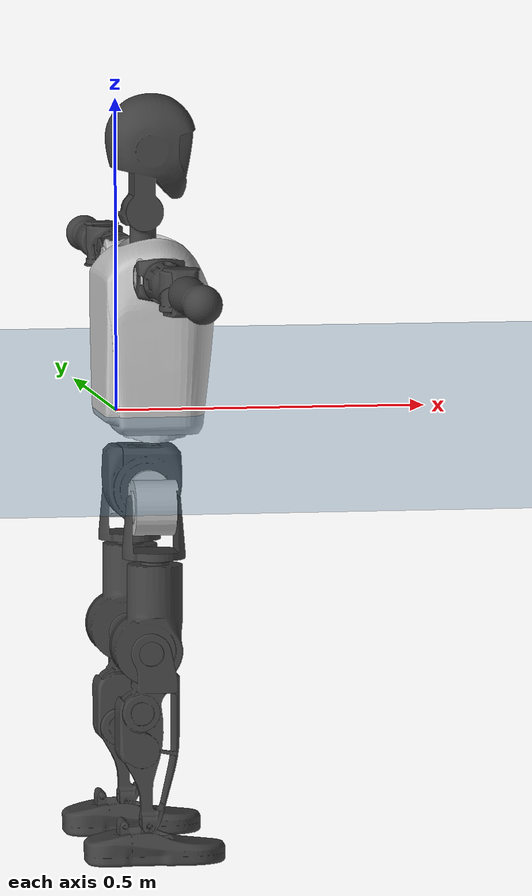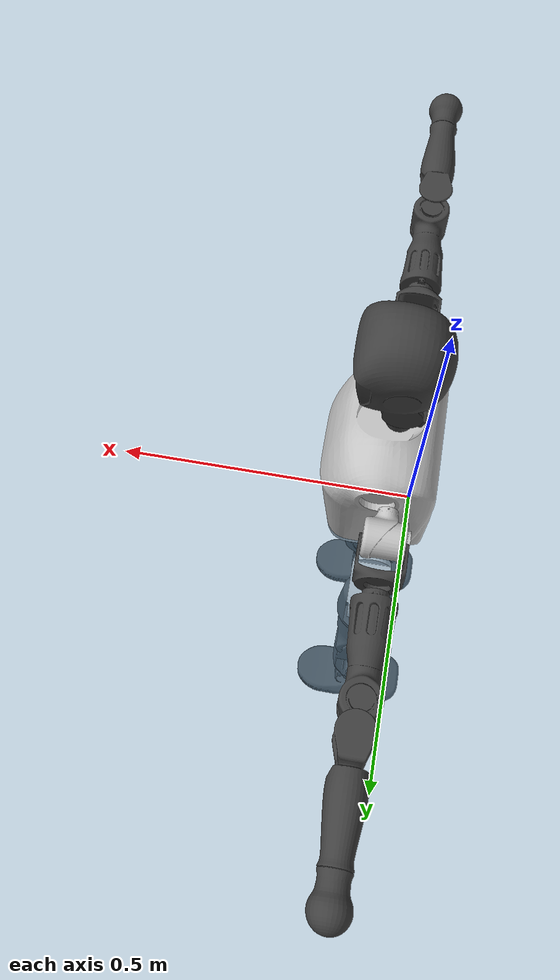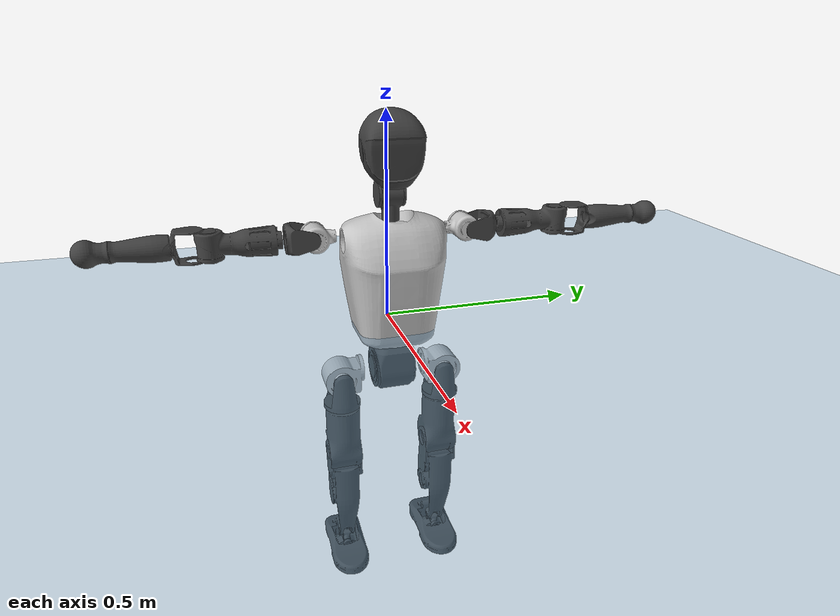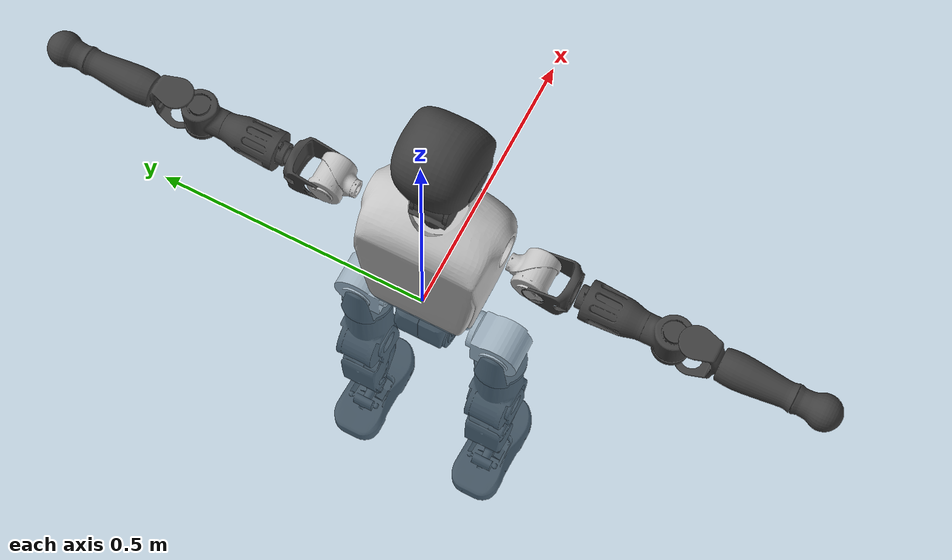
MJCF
<mujoco model="T1">
  <compiler angle="radian" assetdir="assets" balanceinertia="true" inertiafromgeom="false"/>

  <option timestep="0.005" density="1.2" viscosity="2e-05"/>

  <size nkey="1"/>

  <visual>
    <quality shadowsize="8192"/>
    <map shadowclip="0.5"/>
  </visual>

  <default>
    <default class="/">
      <joint armature="0.01" damping="0.01" frictionloss="0.1"/>
      <geom contype="0" conaffinity="0" group="1" solref="-1000 -80"/>
      <site size="0.01 0.005 0.005" group="5"/>
      <general forcelimited="true" biastype="affine" gainprm="25" biasprm="0 -25 -0.6"/>
      <default class="t1">
        <geom rgba="0.25 0.25 0.25 1"/>
        <default class="visual">
          <geom type="mesh" group="2"/>
        </default>
        <default class="collision">
          <geom group="3"/>
        </default>
        <default class="foot">
          <geom size="0.1115 0.05 0.015" type="box" condim="6" group="4" priority="1" solimp="0.015 1 0.015"/>
        </default>
        <default class="reward_collision_sphere">
          <geom group="5" rgba="1 0 0 1"/>
        </default>
      </default>
    </default>
  </default>

  <asset>
    <texture type="skybox" colorspace="auto" name="//unnamed_texture_0" builtin="gradient" rgb1="0.95 0.95 0.95" rgb2="0.95 0.95 0.95" width="100" height="600"/>
    <texture type="2d" colorspace="auto" name="texplane" builtin="checker" rgb1="0.345 0.575 0.748" rgb2="0.345 0.575 0.748" markrgb="1 1 1" width="512" height="512"/>
    <material name="MatPlane" class="/" texture="texplane" texuniform="true" texrepeat="2 2" specular="0.9"/>
    <mesh name="Trunk" class="/" file="Trunk.stl"/>
    <mesh name="H1" class="/" file="H1.stl"/>
    <mesh name="H2" class="/" file="H2.stl"/>
    <mesh name="AL1" class="/" file="AL1.stl"/>
    <mesh name="AL2" class="/" file="AL2.stl"/>
    <mesh name="AL3" class="/" file="AL3.stl"/>
    <mesh name="left_hand_link" class="/" file="left_hand_link.stl"/>
    <mesh name="AR1" class="/" file="AR1.stl"/>
    <mesh name="AR2" class="/" file="AR2.stl"/>
    <mesh name="AR3" class="/" file="AR3.stl"/>
    <mesh name="right_hand_link" class="/" file="right_hand_link.stl"/>
    <mesh name="Waist" class="/" file="Waist.stl"/>
    <mesh name="Hip_Pitch_Left" class="/" file="Hip_Pitch_Left.stl"/>
    <mesh name="Hip_Roll_Left" class="/" file="Hip_Roll_Left.stl"/>
    <mesh name="Hip_Yaw_Left" class="/" file="Hip_Yaw_Left.stl"/>
    <mesh name="Shank_Left" class="/" file="Shank_Left.stl"/>
    <mesh name="Ankle_Cross_Left" class="/" file="Ankle_Cross_Left.stl"/>
    <mesh name="left_foot_link" class="/" file="left_foot_link.stl"/>
    <mesh name="Hip_Pitch_Right" class="/" file="Hip_Pitch_Right.stl"/>
    <mesh name="Hip_Roll_Right" class="/" file="Hip_Roll_Right.stl"/>
    <mesh name="Hip_Yaw_Right" class="/" file="Hip_Yaw_Right.stl"/>
    <mesh name="Shank_Right" class="/" file="Shank_Right.stl"/>
    <mesh name="Ankle_Cross_Right" class="/" file="Ankle_Cross_Right.stl"/>
    <mesh name="right_foot_link" class="/" file="right_foot_link.stl"/>
  </asset>

  <worldbody>
    <geom name="floor" class="/" size="100 100 0.125" type="plane" group="0" material="MatPlane"/>
    <light name="toplight_shadow" class="/" pos="0 0 5" dir="0.0990148 0.0990148 -0.990148" type="directional" ambient="0.04 0.04 0.04" diffuse="0.55 0.55 0.55" specular="0.12 0.12 0.12"/>
    <light name="toplight_fill" class="/" pos="0 0 5" dir="0.0990148 0.0990148 -0.990148" type="directional" castshadow="false" ambient="0.04 0.04 0.04" diffuse="0.3 0.3 0.3" specular="0.08 0.08 0.08"/>
    <body name="trunk" childclass="t1" pos="0.000206536 -0.000280024 4.0011e-05" quat="1 0.000169866 0.000158871 0.000135726">
      <inertial pos="0.0406464 0.00220602 0.112898" quat="0.999808 0.00634238 -0.0185431 -0.000378856" mass="12.0084" diaginertia="0.0169527 0.25052 0.0699607"/>
      <joint name="//unnamed_joint_0" type="free" armature="0" damping="0" frictionloss="0"/>
      <geom name="//unnamed_geom_1" class="visual" rgba="0.76 0.76 0.76 1" mesh="Trunk"/>
      <geom name="//unnamed_geom_2" class="collision" size="0.0758694 0.101159 0.151739" pos="0.0429603 0 0.125825" type="box"/>
      <geom name="//unnamed_geom_3" class="reward_collision_sphere" size="0.116333" pos="0.0429603 0 0.104854"/>
      <geom name="//unnamed_geom_4" class="reward_collision_sphere" size="0.0151739" pos="0.0429603 0.107969 0"/>
      <geom name="//unnamed_geom_5" class="reward_collision_sphere" size="0.0151739" pos="0.0429603 -0.107969 0"/>
      <geom name="//unnamed_geom_6" class="reward_collision_sphere" size="0.0151739" pos="0.0429603 0.135914 0.188738"/>
      <geom name="//unnamed_geom_7" class="reward_collision_sphere" size="0.0151739" pos="0.0429603 -0.135914 0.188738"/>
      <site name="imu" pos="-0.009057 -0.00598082 -0.00333938" size="0.0101159"/>
      <camera name="track" pos="0 -2.54045 0" quat="0.707107 0.707107 0 0" mode="trackcom"/>
      <camera name="ego_camera" pos="0.0873525 0 0.440388" quat="-0.5 -0.5 0.5 0.5"/>
      <body name="H1" pos="0.0434798 -0.00295056 0.257206" quat="1 2.03941e-06 7.62578e-06 -7.25001e-05">
        <inertial pos="-0.0012428 0.000472705 0.0612431" quat="0.767187 -0.0257425 0.00431631 0.640892" mass="0.444054" diaginertia="4.426e-05 0.000718086 0.000190156"/>
        <joint name="AAHead_yaw" pos="0 0 0" axis="-0.00237194 -0.0013907 0.999996" range="-1.57269 1.51636" armature="0.0102557" damping="0.0242889" frictionloss="0.0901634"/>
        <geom name="//unnamed_geom_8" class="visual" mesh="H1"/>
        <body name="H2" pos="-0.00143449 -0.000399974 0.061778" quat="1 5.78936e-05 2.78176e-05 -0.000102269">
          <inertial pos="0.00489216 -0.00127952 0.103534" quat="0.989092 0.0940978 -0.0800467 -0.0802177" mass="0.653768" diaginertia="0.000383298 0.00639339 0.00226392"/>
          <joint name="Head_pitch" pos="0 0 0" axis="0.004822 -0.999988 -0.00021748" stiffness="0.00139354" range="-1.22494 0.354136" armature="0.0100964" damping="0.0106872" frictionloss="0.0897471"/>
          <geom name="//unnamed_geom_9" class="visual" mesh="H2"/>
          <geom name="//unnamed_geom_10" class="collision" size="0.0809273" pos="0.00716004 0 0.11534"/>
          <geom name="//unnamed_geom_11" class="reward_collision_sphere" size="0.0910432" pos="0.0143201 0 0.104854"/>
        </body>
      </body>
      <body name="AL1" pos="0.0398923 0.13528 0.228519" quat="0.999998 -0.000741629 0.00151154 -0.00063887">
        <inertial pos="-0.000516969 0.0557953 -0.00104883" quat="0.497839 0.489626 -0.507003 0.505342" mass="0.544875" diaginertia="0.000257049 0.00440942 0.000368607"/>
        <joint name="Left_Shoulder_Pitch" pos="0 0 0" axis="-4.53025e-06 1 -4.00648e-06" stiffness="0.00423696" range="-3.32685 1.27612" armature="0.0101215" damping="0.00643547" frictionloss="0.100029"/>
        <geom name="//unnamed_geom_12" class="visual" rgba="0.76 0.76 0.76 1" mesh="AL1"/>
        <body name="AL2" pos="0.000170634 0.0630523 -0.00221799" quat="0.999999 0.00100119 0.000239323 -0.000214747">
          <inertial pos="0.0054995 0.050603 0.00157278" quat="0.482392 0.509524 -0.485825 0.521208" mass="0.167215" diaginertia="7.56933e-05 0.00113728 0.000230692"/>
          <joint name="Left_Shoulder_Roll" pos="0 0 0" axis="-0.999998 -0.00187155 -0.00042665" range="-1.56895 1.73529" armature="0.00967457" damping="0.00830874" frictionloss="0.106154"/>
          <geom name="//unnamed_geom_13" class="visual" mesh="AL2"/>
          <body name="AL3" pos="0.000764731 0.0793605 0.00234174" quat="1 -2.09187e-05 -8.27508e-05 -0.000176752">
            <inertial pos="-0.00278975 0.108327 -0.00216501" quat="0.701251 0.712859 -0.00290232 0.00844977" mass="1.12809" diaginertia="0.00252198 0.0432065 0.000809418"/>
            <joint name="Left_Elbow_Pitch" pos="0 0 0" axis="-0.00363192 -0.999985 0.00410735" range="-2.29348 2.32265" armature="0.0107914" damping="0.0223951" frictionloss="0.0983495"/>
            <geom name="//unnamed_geom_14" class="visual" mesh="AL3"/>
            <geom name="//unnamed_geom_15" class="collision" size="0.0303477 0.0758694" pos="0 0.0635114 0" quat="0.707105 0.707108 0 0" type="cylinder"/>
            <geom name="//unnamed_geom_16" class="reward_collision_sphere" size="0.0364173"/>
            <body name="left_hand_link" pos="0.00130085 0.189906 -0.00209699" quat="1 0.000384661 0.000336166 0.000108501">
              <inertial pos="-0.000278331 0.140238 0.000197235" quat="0.707569 0.70664 -0.00217767 -0.000150513" mass="0.333895" diaginertia="0.00148119 0.0267081 0.000275622"/>
              <joint name="Left_Elbow_Yaw" pos="0 0 0" axis="0.0040287 0.00175367 0.99999" stiffness="0.00971869" range="-2.4979 -0.00186323" armature="0.0104002" damping="0.00116856" frictionloss="0.114813"/>
              <geom name="//unnamed_geom_17" class="visual" mesh="left_hand_link"/>
              <geom name="//unnamed_geom_18" class="collision" size="0.0303477 0.0885143" pos="0 0.16513 0" quat="0.707105 0.707108 0 0" type="cylinder"/>
              <geom name="//unnamed_geom_19" class="reward_collision_sphere" size="0.0505796"/>
              <geom name="//unnamed_geom_20" class="reward_collision_sphere" size="0.0354057" pos="0 0.139725 0"/>
              <geom name="//unnamed_geom_21" class="reward_collision_sphere" size="0.0354057" pos="0 0.273099 0"/>
            </body>
          </body>
        </body>
      </body>
      <body name="AR1" pos="0.0406179 -0.134444 0.228258" quat="1 -0.000180145 4.73141e-05 0.000877144">
        <inertial pos="-0.00287148 -0.0574709 -0.00279795" quat="0.505525 0.487808 -0.500618 0.505836" mass="0.571748" diaginertia="0.000258609 0.00437294 0.000385035"/>
        <joint name="Right_Shoulder_Pitch" pos="0 0 0" axis="-0.000758681 -0.999998 0.00178105" stiffness="0.00442337" range="-1.22288 3.29711" armature="0.00978771" damping="0" frictionloss="0.0881628"/>
        <geom name="//unnamed_geom_22" class="visual" rgba="0.76 0.76 0.76 1" mesh="AR1"/>
        <body name="AR2" pos="-0.00170537 -0.0596298 0.00116687" quat="1 -3.12301e-05 -0.000171033 -0.000167795">
          <inertial pos="0.000862459 -0.0504696 -0.000894291" quat="0.509108 0.492682 -0.502272 0.495778" mass="0.164917" diaginertia="7.74193e-05 0.00112989 0.000230361"/>
          <joint name="Right_Shoulder_Roll" pos="0 0 0" axis="-0.999997 0.00160063 0.00176241" stiffness="0.00490087" range="-1.74569 1.56167" armature="0.0100061" damping="0" frictionloss="0.0978754"/>
          <geom name="//unnamed_geom_23" class="visual" mesh="AR2"/>
          <body name="AR3" pos="-0.000408211 -0.0755277 -0.000844171" quat="0.999999 0.000550524 0.000862114 -0.000412217">
            <inertial pos="-0.000552979 -0.107765 0.000814009" quat="0.715376 0.698734 -0.00169504 0.00233509" mass="1.08282" diaginertia="0.0024753 0.0419995 0.000805252"/>
            <joint name="Right_Elbow_Pitch" pos="0 0 0" axis="-0.000228083 1 0.000938792" stiffness="0.000842081" range="-2.25094 2.26206" armature="0.0102094" damping="0.00871806" frictionloss="0.0958834"/>
            <geom name="//unnamed_geom_24" class="visual" mesh="AR3"/>
            <geom name="//unnamed_geom_25" class="collision" size="0.0303477 0.0758694" pos="0 -0.0635114 0" quat="0.707105 0.707108 0 0" type="cylinder"/>
            <geom name="//unnamed_geom_26" class="reward_collision_sphere" size="0.0364173"/>
            <body name="right_hand_link" pos="-0.0017468 -0.184308 0.00211494" quat="0.999999 -0.000183602 -0.00117338 3.85733e-05">
              <inertial pos="-2.94613e-05 -0.136699 0.00110661" quat="0.703837 0.710354 0.000101797 -0.0030949" mass="0.348038" diaginertia="0.00154926 0.0271469 0.000274243"/>
              <joint name="Right_Elbow_Yaw" pos="0 0 0" axis="0.000968831 -0.000465015 0.999999" stiffness="0.000948966" range="0.0412934 2.42727" armature="0.0103823" damping="0.008209" frictionloss="0.114561"/>
              <geom name="//unnamed_geom_27" class="visual" mesh="right_hand_link"/>
              <geom name="//unnamed_geom_28" class="collision" size="0.0303477 0.0885143" pos="0 -0.16513 0" quat="0.707105 0.707108 0 0" type="cylinder"/>
              <geom name="//unnamed_geom_29" class="reward_collision_sphere" size="0.0505796"/>
              <geom name="//unnamed_geom_30" class="reward_collision_sphere" size="0.0354057" pos="0 -0.139725 0"/>
              <geom name="//unnamed_geom_31" class="reward_collision_sphere" size="0.0354057" pos="0 -0.273099 0"/>
            </body>
          </body>
        </body>
      </body>
      <body name="Waist" pos="0.0414773 0.000287853 -0.122581" quat="1 8.62903e-05 0.000209639 0.000312834">
        <inertial pos="-0.000637671 -0.00137755 0.00658372" quat="0.983464 -0.0020312 -0.181092 -0.000414955" mass="2.52469" diaginertia="0.000957155 0.0170873 0.00588325"/>
        <joint name="Waist" pos="0 0 0" axis="0.000294572 -0.000730248 1" range="-1.60473 1.57304" armature="0.0112475" damping="0.0196222" frictionloss="0.101766"/>
        <geom name="//unnamed_geom_32" class="visual" mesh="Waist"/>
        <body name="Hip_Pitch_Left" pos="-0.000589712 0.135277 -0.00173034" quat="1 -2.06755e-05 -0.000212564 7.55346e-05">
          <inertial pos="0.000457398 -0.00679137 -0.0167508" quat="0.973193 0.229336 0.0168424 0.00409382" mass="1.09595" diaginertia="0.000339862 0.00498672 0.00159275"/>
          <joint name="Left_Hip_Pitch" pos="0 0 0" axis="0.00109175 0.999998 0.00189516" stiffness="0.00397341" range="-1.79976 1.62474" armature="0.0113987" damping="0.0190135" frictionloss="0.102129"/>
          <geom name="//unnamed_geom_33" class="visual" rgba="0.76 0.76 0.76 1" mesh="Hip_Pitch_Left"/>
          <body name="Hip_Roll_Left" pos="0.00237285 -0.00218853 -0.0230624" quat="1 -4.3096e-06 -5.59622e-05 3.35708e-05">
            <inertial pos="-0.00047803 0.000335598 -0.0551073" quat="0.708694 -0.0183858 -0.00620285 0.705249" mass="0.386608" diaginertia="0.000317409 0.00512516 0.000651327"/>
            <joint name="Left_Hip_Roll" pos="0 0 0" axis="-0.999928 0.00852373 -0.00849527" stiffness="0.0102288" range="-1.56688 0.183373" armature="0.0114388" damping="0.0120655" frictionloss="0.0920471"/>
            <geom name="//unnamed_geom_34" class="visual" mesh="Hip_Roll_Left"/>
            <geom name="//unnamed_geom_35" class="reward_collision_sphere" size="0.0556375"/>
            <body name="Hip_Yaw_Left" pos="-0.00241502 -0.00110764 -0.0838805" quat="1 4.561e-05 0.000547388 0.00012581">
              <inertial pos="-0.00774664 -0.000522788 -0.0926833" quat="0.699111 -0.0329186 -0.0284474 0.713688" mass="2.2388" diaginertia="0.00483509 0.0803575 0.00327685"/>
              <joint name="Left_Hip_Yaw" pos="0 0 0" axis="0.00182607 -0.00656104 -0.999977" stiffness="0.00266711" range="-1.04586 1.06068" armature="0.0103065" damping="0" frictionloss="0.10147"/>
              <geom name="//unnamed_geom_36" class="visual" mesh="Hip_Yaw_Left"/>
              <geom name="//unnamed_geom_37" class="collision" size="0.0505796 0.0809273" type="cylinder"/>
              <body name="Shank_Left" pos="-0.00746414 -0.000311865 -0.140831" quat="1 -0.000158194 -0.000245002 9.67913e-05">
                <inertial pos="-0.0034012 0.00319606 -0.127671" quat="0.997592 0.00138121 -0.0236235 0.0651949" mass="1.73378" diaginertia="0.00647422 0.115062 0.00232349"/>
                <joint name="Left_Knee_Pitch" pos="0 0 0" axis="-0.000297793 0.999992 -0.00401724" stiffness="0.000944005" range="0.023486 2.31874" armature="0.0102835" damping="0.0148227" frictionloss="0.105689"/>
                <geom name="//unnamed_geom_38" class="visual" mesh="Shank_Left"/>
                <geom name="//unnamed_geom_39" class="collision" size="0.0505796 0.0758694" pos="0 0 -0.125825" type="cylinder"/>
                <geom name="//unnamed_geom_40" class="reward_collision_sphere" size="0.0657535"/>
                <body name="Ankle_Cross_Left" pos="-0.000310839 -0.000953883 -0.290972" quat="1 0.000419034 6.92981e-05 2.17254e-05">
                  <inertial pos="-0.00340852 0.00269883 -0.00668509" quat="0.442668 0.560933 0.542309 0.441928" mass="0.0789239" diaginertia="5.704e-06 8.33403e-05 1.45565e-05"/>
                  <joint name="Left_Ankle_Pitch" pos="0 0 0" axis="-0.000834543 1 0.000334176" range="-0.815253 0.329116" armature="0.00943977" damping="0.0102693" frictionloss="0.0995934"/>
                  <geom name="//unnamed_geom_41" class="visual" mesh="Ankle_Cross_Left"/>
                  <body name="left_foot_link" pos="0.000191194 -0.00236495 -0.0102971" quat="1 -8.68888e-05 -0.000234374 0.000416088">
                    <inertial pos="-0.00289491 7.53929e-05 -0.0122896" quat="-0.000221088 0.621737 0.000476792 0.783226" mass="0.682647" diaginertia="0.000473207 0.00778872 0.00275051"/>
                    <joint name="Left_Ankle_Roll" pos="0 0 0" axis="-0.999997 0.00058481 0.00257483" range="-0.436681 0.442519" armature="0.0101331" damping="0.0118165" frictionloss="0.100532"/>
                    <geom name="//unnamed_geom_42" class="visual" mesh="left_foot_link"/>
                    <geom name="left_foot" class="foot" size="0.106055 0.0477659 0.014829" pos="0.00716004 0 -0.0157281"/>
                    <geom name="//unnamed_geom_44" class="reward_collision_sphere" size="0.0526028" pos="0.00716004 0 -0.0157281"/>
                    <geom name="//unnamed_geom_45" class="reward_collision_sphere" size="0.0303477" pos="0.0680204 -0.0292152 -0.0157281"/>
                    <geom name="//unnamed_geom_46" class="reward_collision_sphere" size="0.0303477" pos="-0.0501203 -0.0292152 -0.0157281"/>
                    <site name="left_foot" class="foot" pos="0.00716004 0 -0.0157281" size="0.0101159"/>
                  </body>
                </body>
              </body>
            </body>
          </body>
        </body>
        <body name="Hip_Pitch_Right" pos="-0.000277629 -0.134989 0.000945308" quat="0.999999 0.000345559 0.000337863 -0.0010838">
          <inertial pos="-0.00246155 0.00976633 -0.0159504" quat="0.973618 -0.227568 0.0164501 -0.00330128" mass="1.08758" diaginertia="0.000349783 0.0050226 0.00158693"/>
          <joint name="Right_Hip_Pitch" pos="0 0 0" axis="-0.000286399 -0.999994 0.00333961" range="-1.57348 1.75075" armature="0.00893582" damping="0.00970257" frictionloss="0.0995203"/>
          <geom name="//unnamed_geom_47" class="visual" rgba="0.76 0.76 0.76 1" mesh="Hip_Pitch_Right"/>
          <body name="Hip_Roll_Right" pos="0.00197966 0.000529758 -0.0234859" quat="1 -0.000275586 0.000486641 -0.000728469">
            <inertial pos="0.00113627 -2.7666e-05 -0.0539654" quat="0.701998 0.00369523 -0.00973584 0.712103" mass="0.395618" diaginertia="0.000329103 0.00517108 0.000652196"/>
            <joint name="Right_Hip_Roll" pos="0 0 0" axis="-0.999997 0.000117205 -0.00235784" range="-0.156438 1.58656" armature="0.0101069" damping="0.0115815" frictionloss="0.109028"/>
            <geom name="//unnamed_geom_48" class="visual" mesh="Hip_Roll_Right"/>
            <geom name="//unnamed_geom_49" class="reward_collision_sphere" size="0.0556375"/>
            <body name="Hip_Yaw_Right" pos="-0.000515653 0.000488123 -0.0868234" quat="1 -0.000625087 -6.80938e-05 -0.000258358">
              <inertial pos="-0.00420049 -0.00196281 -0.0962457" quat="0.714493 -0.0315353 -0.0337124 0.698118" mass="2.20332" diaginertia="0.00482309 0.0851405 0.00318381"/>
              <joint name="Right_Hip_Yaw" pos="0 0 0" axis="0.00584195 -0.0110945 -0.999921" range="-1.02152 0.991351" armature="0.0115107" damping="0.00133369" frictionloss="0.10067"/>
              <geom name="//unnamed_geom_50" class="visual" mesh="Hip_Yaw_Right"/>
              <geom name="//unnamed_geom_51" class="collision" size="0.0505796 0.0809273" type="cylinder"/>
              <body name="Shank_Right" pos="-0.0109595 5.64275e-05 -0.138441" quat="1 -0.000823796 -0.000119414 0.000436929">
                <inertial pos="-0.00361079 -0.000600483 -0.131383" quat="0.999172 0.000569504 -0.0226084 -0.0338134" mass="1.8999" diaginertia="0.00685453 0.11622 0.00255449"/>
                <joint name="Right_Knee_Pitch" pos="0 0 0" axis="-0.0035428 -0.999956 0.00863488" stiffness="0.00534454" range="-2.28615 0.00199581" armature="0.0113421" damping="0.0173805" frictionloss="0.10057"/>
                <geom name="//unnamed_geom_52" class="visual" mesh="Shank_Right"/>
                <geom name="//unnamed_geom_53" class="collision" size="0.0505796 0.0758694" pos="0 0 -0.125825" type="cylinder"/>
                <geom name="//unnamed_geom_54" class="reward_collision_sphere" size="0.0657535"/>
                <body name="Ankle_Cross_Right" pos="-0.00141938 -0.00103568 -0.29407" quat="1 9.14768e-05 -0.000257527 -2.60337e-05">
                  <inertial pos="-0.00304116 -0.00191695 -0.00824732" quat="0.443694 0.549929 0.551753 0.443037" mass="0.0771004" diaginertia="5.65272e-06 8.80358e-05 1.47719e-05"/>
                  <joint name="Right_Ankle_Pitch" pos="0 0 0" axis="0.00383038 -0.999975 -0.0058959" range="-0.406171 0.813266" armature="0.0100667" damping="0.00569631" frictionloss="0.10584"/>
                  <geom name="//unnamed_geom_55" class="visual" mesh="Ankle_Cross_Right"/>
                  <body name="right_foot_link" pos="0.00266347 -0.000839185 -0.0145178" quat="1 -1.23325e-05 -1.43822e-05 1.44058e-05">
                    <inertial pos="-0.00256498 0.000662332 -0.00986216" quat="0.000688968 0.621006 -0.000656258 0.783805" mass="0.709889" diaginertia="0.00051186 0.00766029 0.00277225"/>
                    <joint name="Right_Ankle_Roll" pos="0 0 0" axis="-0.999951 -0.00671395 -0.00733617" range="-0.490775 0.44091" armature="0.00962799" damping="0" frictionloss="0.0959415"/>
                    <geom name="//unnamed_geom_56" class="visual" mesh="right_foot_link"/>
                    <geom name="right_foot" class="foot" size="0.106931 0.0448678 0.0147703" pos="0.00716004 0 -0.0157281"/>
                    <geom name="//unnamed_geom_58" class="reward_collision_sphere" size="0.0404637"/>
                    <geom name="//unnamed_geom_59" class="reward_collision_sphere" size="0.0303477" pos="0.00716004 0 -0.0157281"/>
                    <geom name="//unnamed_geom_60" class="reward_collision_sphere" size="0.0303477" pos="0.0680204 0.0292152 -0.0157281"/>
                    <geom name="//unnamed_geom_61" class="reward_collision_sphere" size="0.0303477" pos="-0.0501203 0.0292152 -0.0157281"/>
                    <site name="right_foot" class="foot" pos="0.00716004 0 -0.0157281" size="0.0101159"/>
                  </body>
                </body>
              </body>
            </body>
          </body>
        </body>
      </body>
    </body>
  </worldbody>

  <contact>
    <pair class="/" geom1="floor" geom2="left_foot" name="//unnamed_contact_0"/>
    <pair class="/" geom1="floor" geom2="right_foot" name="//unnamed_contact_1"/>
  </contact>

  <actuator>
    <general name="AAHead_yaw" class="/" joint="AAHead_yaw" forcerange="-6.95961 6.95961" gainprm="23.5427" biasprm="0 -23.5427 -0.605885"/>
    <general name="Head_pitch" class="/" joint="Head_pitch" forcerange="-7.1013 7.1013" gainprm="23.5427" biasprm="0 -23.5427 -0.605885"/>
    <general name="Left_Shoulder_Pitch" class="/" joint="Left_Shoulder_Pitch" forcerange="-16.757 16.757" gainprm="23.5427" biasprm="0 -23.5427 -0.605885"/>
    <general name="Left_Shoulder_Roll" class="/" joint="Left_Shoulder_Roll" forcerange="-18.1992 18.1992" gainprm="23.5427" biasprm="0 -23.5427 -0.605885"/>
    <general name="Left_Elbow_Pitch" class="/" joint="Left_Elbow_Pitch" forcerange="-18.1014 18.1014" gainprm="23.5427" biasprm="0 -23.5427 -0.605885"/>
    <general name="Left_Elbow_Yaw" class="/" joint="Left_Elbow_Yaw" forcerange="-18.4546 18.4546" gainprm="23.5427" biasprm="0 -23.5427 -0.605885"/>
    <general name="Right_Shoulder_Pitch" class="/" joint="Right_Shoulder_Pitch" forcerange="-18.3589 18.3589" gainprm="23.5427" biasprm="0 -23.5427 -0.605885"/>
    <general name="Right_Shoulder_Roll" class="/" joint="Right_Shoulder_Roll" forcerange="-17.047 17.047" gainprm="23.5427" biasprm="0 -23.5427 -0.605885"/>
    <general name="Right_Elbow_Pitch" class="/" joint="Right_Elbow_Pitch" forcerange="-20.0475 20.0475" gainprm="23.5427" biasprm="0 -23.5427 -0.605885"/>
    <general name="Right_Elbow_Yaw" class="/" joint="Right_Elbow_Yaw" forcerange="-18.1321 18.1321" gainprm="23.5427" biasprm="0 -23.5427 -0.605885"/>
    <general name="Waist" class="/" joint="Waist" forcerange="-31.057 31.057" gainprm="23.5427" biasprm="0 -23.5427 -0.605885"/>
    <general name="Left_Hip_Pitch" class="/" joint="Left_Hip_Pitch" forcerange="-46.28 46.28" gainprm="23.5427" biasprm="0 -23.5427 -0.605885"/>
    <general name="Left_Hip_Roll" class="/" joint="Left_Hip_Roll" forcerange="-33.3659 33.3659" gainprm="23.5427" biasprm="0 -23.5427 -0.605885"/>
    <general name="Left_Hip_Yaw" class="/" joint="Left_Hip_Yaw" forcerange="-27.2413 27.2413" gainprm="23.5427" biasprm="0 -23.5427 -0.605885"/>
    <general name="Left_Knee_Pitch" class="/" joint="Left_Knee_Pitch" forcerange="-57.9653 57.9653" gainprm="23.5427" biasprm="0 -23.5427 -0.605885"/>
    <general name="Left_Ankle_Pitch" class="/" joint="Left_Ankle_Pitch" forcerange="-19.9532 19.9532" gainprm="23.5427" biasprm="0 -23.5427 -0.605885"/>
    <general name="Left_Ankle_Roll" class="/" joint="Left_Ankle_Roll" forcerange="-16.7661 16.7661" gainprm="23.5427" biasprm="0 -23.5427 -0.605885"/>
    <general name="Right_Hip_Pitch" class="/" joint="Right_Hip_Pitch" forcerange="-45.6125 45.6125" gainprm="23.5427" biasprm="0 -23.5427 -0.605885"/>
    <general name="Right_Hip_Roll" class="/" joint="Right_Hip_Roll" forcerange="-30.8364 30.8364" gainprm="23.5427" biasprm="0 -23.5427 -0.605885"/>
    <general name="Right_Hip_Yaw" class="/" joint="Right_Hip_Yaw" forcerange="-33.3335 33.3335" gainprm="23.5427" biasprm="0 -23.5427 -0.605885"/>
    <general name="Right_Knee_Pitch" class="/" joint="Right_Knee_Pitch" forcerange="-60.9101 60.9101" gainprm="23.5427" biasprm="0 -23.5427 -0.605885"/>
    <general name="Right_Ankle_Pitch" class="/" joint="Right_Ankle_Pitch" forcerange="-21.0479 21.0479" gainprm="23.5427" biasprm="0 -23.5427 -0.605885"/>
    <general name="Right_Ankle_Roll" class="/" joint="Right_Ankle_Roll" forcerange="-14.0687 14.0687" gainprm="23.5427" biasprm="0 -23.5427 -0.605885"/>
  </actuator>

  <sensor>
    <gyro site="imu" name="imu_angular_velocity"/>
    <velocimeter site="imu" name="imu_linear_velocity"/>
    <framelinvel objtype="site" objname="left_foot" name="left_foot_global_linear_velocity"/>
    <framelinvel objtype="site" objname="right_foot" name="right_foot_global_linear_velocity"/>
  </sensor>

  <keyframe>
    <key name="home" qpos="0 0 0.6385 1 0 0 0 0 0 0 1.4 0 -0.4 0 -1.4 0 0.4 0 -0.4 0 0 0.8 -0.4 0 0.4 0 0 -0.8 0.4 0"/>
  </keyframe>
</mujoco>
